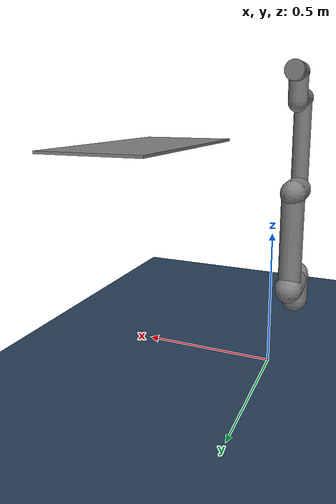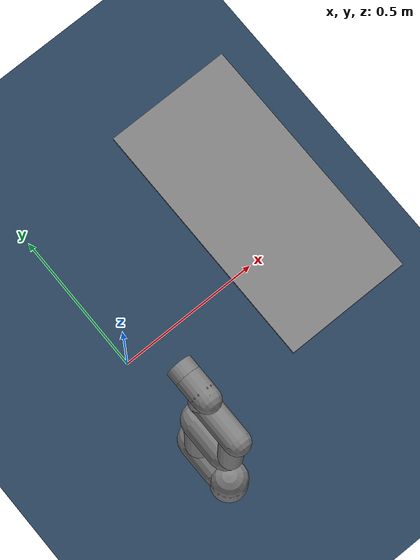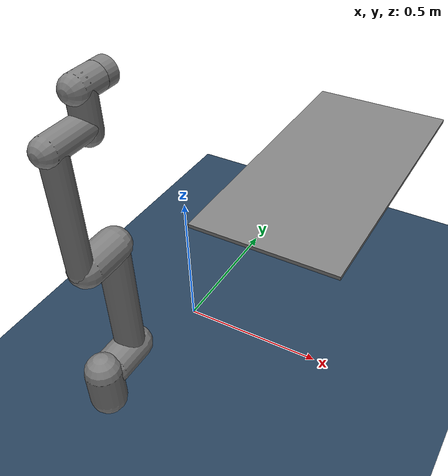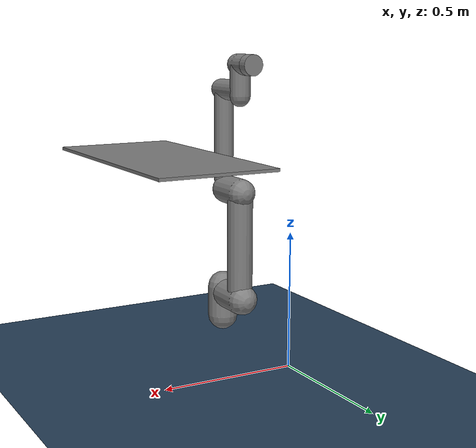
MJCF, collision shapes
<mujoco model="ur5e scene">  <!-- 定义一个MuJoCo模型，名称为“ur5e scene”。-->

  <include file="ur5e.xml"/>
  <!-- 包含另一个文件“ur5e.xml”，通常这个文件定义了UR5e机械臂的模型。-->
  <!-- 包含另一个文件“ur5e.xml”，通常这个文件定义了UR5e机械臂的模型。-->
  <statistic center="0.3 0 0.4" extent="0.8"/>
  <!-- 定义场景的统计中心和范围，用于相机自动对焦等。-->

  <visual>    <!-- 视觉设置，影响仿真的渲染效果。-->
    <headlight diffuse="0.6 0.6 0.6" ambient="0.1 0.1 0.1" specular="0 0 0"/>
    <!-- 头灯的设置，包括漫反射、环境光和高光。-->
    <!-- 雾化效果的RGBA颜色设置，已被注释掉。-->
    <!-- 全局光照设置，包括方位角和高度角，已被注释掉。-->
  </visual>

  <asset>    <!-- 资产定义区，包括贴图和材料。-->
    <texture type="skybox" builtin="gradient" rgb1="0.3 0.5 0.7" rgb2="0 0 0" width="512" height="3072"/>
    <!-- 天空盒纹理，使用渐变色。-->
    <texture type="2d" name="groundplane" builtin="checker" mark="edge" rgb1="0.2 0.3 0.4" rgb2="0.1 0.2 0.3" markrgb="0.8 0.8 0.8" width="300" height="300"/>
    <!-- 地面纹理，棋盘格样式。-->
    <material name="groundplane" texture="groundplane" texuniform="true" texrepeat="5 5" reflectance="0.2"/>
    <!-- 地面材料，使用上面定义的地面纹理。-->
  </asset>

  <worldbody>    <!-- 世界主体部分，包含所有物理实体。-->
    <light pos="0 0 1.5" dir="0 0 -1" directional="true"/>
    <!-- 定向光源设置。-->
    <geom name="floor" size="1 1 0.05" type="plane" material="groundplane"/>
    <!-- 地面几何体，使用“groundplane”材料。-->

    <body name="object1" pos="0 0 0">      <!-- 定义一个名为“object1”的物体。-->
      <geom type="box" pos="0.5 0 0.8" size="0.2 0.4 0.005"/>
      <!-- “object1”内部的几何体，一个盒子。-->
    </body>
  </worldbody>

</mujoco>

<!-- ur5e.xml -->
<mujoco model="ur5e">
  <compiler angle="radian" meshdir="assets"/>
  <default>
    <default class="ur5e">
      <material specular="0.5" shininess="0.25"/>
      <joint axis="0 1 0" range="-6.28319 6.28319" armature="0.1"/>
      <general gaintype="fixed" biastype="affine" ctrlrange="-6.2831 6.2831" gainprm="2000" biasprm="0 -2000 -400"
        forcerange="-150 150"/>
      <default class="size3">
        <default class="size3_limited">
          <joint range="-3.1415 3.1415"/>
          <general ctrlrange="-3.1415 3.1415"/>
        </default>
      </default>
      <default class="size1">
        <general gainprm="500" biasprm="0 -500 -100" forcerange="-28 28"/>
      </default>
      <default class="visual">
        <geom type="mesh" contype="0" conaffinity="0" group="2"/>
      </default>
      <default class="collision">
        <geom type="capsule" group="3"/>
        <default class="eef_collision">
          <geom type="cylinder"/>
        </default>
      </default>
      <site size="0.001" rgba="0.5 0.5 0.5 0.3" group="4"/>
    </default>
  </default>

  <asset>
    <material class="ur5e" name="black" rgba="0.033 0.033 0.033 1"/>
    <material class="ur5e" name="jointgray" rgba="0.278 0.278 0.278 1"/>
    <material class="ur5e" name="linkgray" rgba="0.82 0.82 0.82 1"/>
    <material class="ur5e" name="urblue" rgba="0.49 0.678 0.8 1"/>

    <mesh file="base_0.stl"/>
    <mesh file="base_1.stl"/>
    <mesh file="shoulder_0.stl"/>
    <mesh file="shoulder_1.stl"/>
    <mesh file="shoulder_2.stl"/>
    <mesh file="upperarm_0.stl"/>
    <mesh file="upperarm_1.stl"/>
    <mesh file="upperarm_2.stl"/>
    <mesh file="upperarm_3.stl"/>
    <mesh file="forearm_0.stl"/>
    <mesh file="forearm_1.stl"/>
    <mesh file="forearm_2.stl"/>
    <mesh file="forearm_3.stl"/>
    <mesh file="wrist1_0.stl"/>
    <mesh file="wrist1_1.stl"/>
    <mesh file="wrist1_2.stl"/>
    <mesh file="wrist2_0.stl"/>
    <mesh file="wrist2_1.stl"/>
    <mesh file="wrist2_2.stl"/>
    <mesh file="wrist3.stl"/>
  </asset>

  <worldbody>
    <light name="spotlight" mode="targetbodycom" target="wrist_2_link" pos="0 -1 2"/>
    <body name="base" pos="0 -0.5 0" quat="1 0 0 0" childclass="ur5e">
      <inertial mass="4.0" pos="0 0 0" diaginertia="0.00443333156 0.00443333156 0.0072"/>
      <geom mesh="base_0" material="black" class="visual"/>
      <geom mesh="base_1" material="jointgray" class="visual"/>
      <body name="shoulder_link" pos="0 0 0.163">
        <inertial mass="3.7" pos="0 0 0" diaginertia="0.0102675 0.0102675 0.00666"/>
        <joint name="shoulder_pan_joint" class="size3" axis="0 0 1"/>
        <geom mesh="shoulder_0" material="urblue" class="visual"/>
        <geom mesh="shoulder_1" material="black" class="visual"/>
        <geom mesh="shoulder_2" material="jointgray" class="visual"/>
        <geom class="collision" size="0.06 0.06" pos="0 0 -0.04"/>
        <body name="upper_arm_link" pos="0 0.138 0" quat="1 0 0 0">
          <inertial mass="8.393" pos="0 0 0.2125" diaginertia="0.133886 0.133886 0.0151074"/>
          <joint name="shoulder_lift_joint" class="size3"/>
          <geom mesh="upperarm_0" material="linkgray" class="visual"/>
          <geom mesh="upperarm_1" material="black" class="visual"/>
          <geom mesh="upperarm_2" material="jointgray" class="visual"/>
          <geom mesh="upperarm_3" material="urblue" class="visual"/>
          <geom class="collision" pos="0 -0.04 0" quat="1 1 0 0" size="0.06 0.06"/>
          <geom class="collision" size="0.05 0.2" pos="0 0 0.2"/>
          <body name="forearm_link" pos="0 -0.131 0.425">
            <inertial mass="2.275" pos="0 0 0.196" diaginertia="0.0311796 0.0311796 0.004095"/>
            <joint name="elbow_joint" class="size3_limited"/>
            <geom mesh="forearm_0" material="urblue" class="visual"/>
            <geom mesh="forearm_1" material="linkgray" class="visual"/>
            <geom mesh="forearm_2" material="black" class="visual"/>
            <geom mesh="forearm_3" material="jointgray" class="visual"/>
            <geom class="collision" pos="0 0.08 0" quat="1 1 0 0" size="0.055 0.06"/>
            <geom class="collision" size="0.038 0.19" pos="0 0 0.2"/>
            <body name="wrist_1_link" pos="0 0 0.392" quat="1 0 0 0">
              <inertial mass="1.219" pos="0 0.127 0" diaginertia="0.0025599 0.0025599 0.0021942"/>
              <joint name="wrist_1_joint" class="size1"/>
              <geom mesh="wrist1_0" material="black" class="visual"/>
              <geom mesh="wrist1_1" material="urblue" class="visual"/>
              <geom mesh="wrist1_2" material="jointgray" class="visual"/>
              <geom class="collision" pos="0 0.05 0" quat="1 1 0 0" size="0.04 0.07"/>
              <body name="wrist_2_link" pos="0 0.127 0">
                <inertial mass="1.219" pos="0 0 0.1" diaginertia="0.0025599 0.0021942 0.0025599"/>
                <joint name="wrist_2_joint" axis="0 0 1" class="size1"/>
                <geom mesh="wrist2_0" material="black" class="visual"/>
                <geom mesh="wrist2_1" material="urblue" class="visual"/>
                <geom mesh="wrist2_2" material="jointgray" class="visual"/>
                <geom class="collision" size="0.04 0.06" pos="0 0 0.04"/>
                <geom class="collision" pos="0 0.02 0.1" quat="1 1 0 0" size="0.04 0.04"/>
                <body name="wrist_3_link" pos="0 0 0.1">
                  <inertial mass="0.1889" pos="0 0.0771683 0" quat="1 0 0 1"
                    diaginertia="0.000132134 9.90863e-05 9.90863e-05"/>
                  <joint name="wrist_3_joint" class="size1"/>
                  <geom material="linkgray" mesh="wrist3" class="visual"/>
                  <geom class="eef_collision" pos="0 0.08 0" quat="1 1 0 0" size="0.04 0.02"/>
                  <site name="attachment_site" pos="0 0.1 0" quat="-1 1 0 0"/>
                </body>
              </body>
            </body>
          </body>
        </body>
      </body>
    </body>
  </worldbody>

  <actuator>
    <motor name="shoulder_pan" joint="shoulder_pan_joint"/>
    <motor name="shoulder_lift" joint="shoulder_lift_joint"/>
    <motor name="elbow" joint="elbow_joint"/>
    <motor name="wrist_1" joint="wrist_1_joint"/>
    <motor name="wrist_2" joint="wrist_2_joint"/>
    <motor name="wrist_3" joint="wrist_3_joint"/>
  </actuator>
</mujoco>
